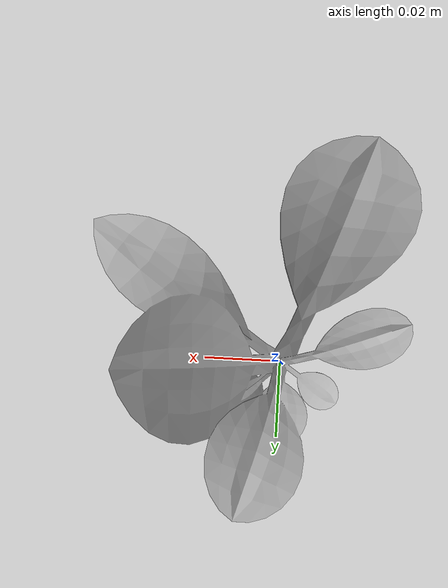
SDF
<sdf version="1.6">
  <model name="sugar_beet_10">
    <static>true</static>
    <link name="body">
      <visual name="visual">
        <geometry>
          <mesh>
            <uri>file:///sugar_beet_10/media/sugar_beet.dae</uri>
          </mesh>
        </geometry>
      </visual>
    </link>
  </model>
</sdf>
